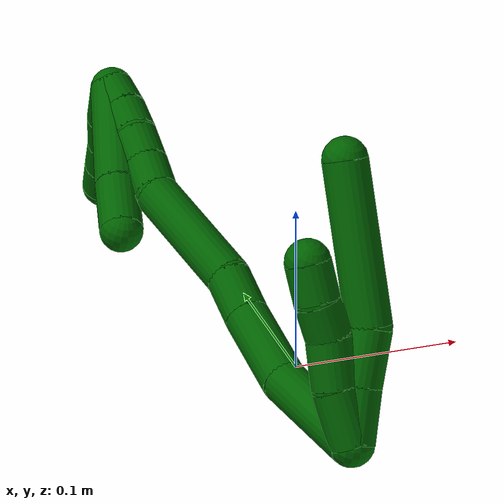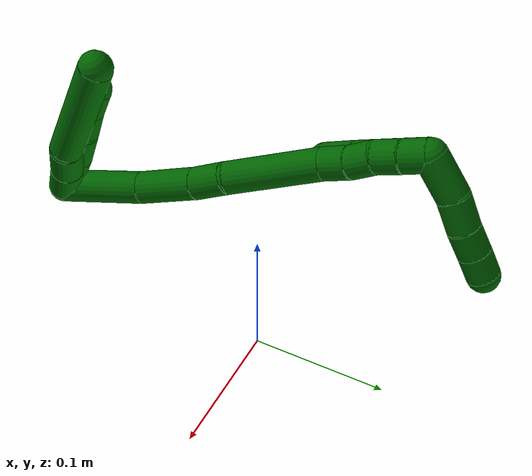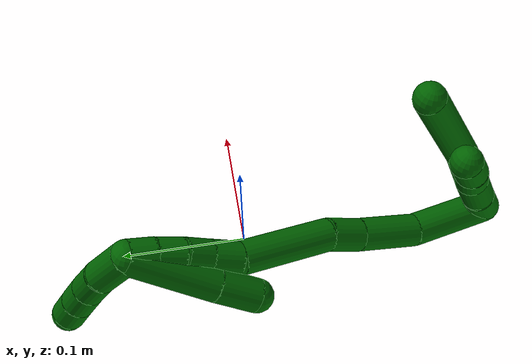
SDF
<sdf version="1.7">
 <world name="default">
  <model name="6">
   <static>0</static>
   <link name="6">
    <collision name="collision-cylinder-e_1_2_8">
     <pose>0.002077 0.008675 0.012284 -0.614861 0.137244 -0.043636</pose>
     <geometry><cylinder><radius>0.0125</radius><length>0.030363</length></cylinder></geometry>
     <surface>
      <friction><ode><mu>1.16</mu><mu2>1.16</mu2><slip1>0</slip1><slip2>0</slip2></ode></friction>
      <contact><ode><kp>1e+06</kp><kd>1</kd><max_vel>0</max_vel><min_depth>0.001</min_depth></ode></contact>
     </surface>
    </collision>
    <visual name="visual-cylinder-e_1_2_8">
     <pose>0.002077 0.008675 0.012284 -0.614861 0.137244 -0.043636</pose>
     <geometry><cylinder><radius>0.0125</radius><length>0.030363</length></cylinder></geometry>
     <material><ambient>0 0.392157 0.003922 1</ambient></material>
    </visual>
    <collision name="collision-cylinder-e_2_8_9">
     <pose>0.006754 0.025427 0.037812 -0.547629 0.16606 -0.04674</pose>
     <geometry><cylinder><radius>0.0125</radius><length>0.031457</length></cylinder></geometry>
     <surface>
      <friction><ode><mu>1.16</mu><mu2>1.16</mu2><slip1>0</slip1><slip2>0</slip2></ode></friction>
      <contact><ode><kp>1e+06</kp><kd>1</kd><max_vel>0</max_vel><min_depth>0.001</min_depth></ode></contact>
     </surface>
    </collision>
    <visual name="visual-cylinder-e_2_8_9">
     <pose>0.006754 0.025427 0.037812 -0.547629 0.16606 -0.04674</pose>
     <geometry><cylinder><radius>0.0125</radius><length>0.031457</length></cylinder></geometry>
     <material><ambient>0 0.392157 0.003922 1</ambient></material>
    </visual>
    <collision name="collision-cylinder-e_3_9_6">
     <pose>0.003387 0.060186 0.085644 -0.657087 -0.135745 0.046338</pose>
     <geometry><cylinder><radius>0.0125</radius><length>0.08818</length></cylinder></geometry>
     <surface>
      <friction><ode><mu>1.16</mu><mu2>1.16</mu2><slip1>0</slip1><slip2>0</slip2></ode></friction>
      <contact><ode><kp>1e+06</kp><kd>1</kd><max_vel>0</max_vel><min_depth>0.001</min_depth></ode></contact>
     </surface>
    </collision>
    <visual name="visual-cylinder-e_3_9_6">
     <pose>0.003387 0.060186 0.085644 -0.657087 -0.135745 0.046338</pose>
     <geometry><cylinder><radius>0.0125</radius><length>0.08818</length></cylinder></geometry>
     <material><ambient>0 0.392157 0.003922 1</ambient></material>
    </visual>
    <collision name="collision-cylinder-e_1_2_10">
     <pose>-0.004822 0.008532 0.012124 -0.613232 -0.314481 0.100309</pose>
     <geometry><cylinder><radius>0.0125</radius><length>0.031179</length></cylinder></geometry>
     <surface>
      <friction><ode><mu>1.16</mu><mu2>1.16</mu2><slip1>0</slip1><slip2>0</slip2></ode></friction>
      <contact><ode><kp>1e+06</kp><kd>1</kd><max_vel>0</max_vel><min_depth>0.001</min_depth></ode></contact>
     </surface>
    </collision>
    <visual name="visual-cylinder-e_1_2_10">
     <pose>-0.004822 0.008532 0.012124 -0.613232 -0.314481 0.100309</pose>
     <geometry><cylinder><radius>0.0125</radius><length>0.031179</length></cylinder></geometry>
     <material><ambient>0 0.392157 0.003922 1</ambient></material>
    </visual>
    <collision name="collision-cylinder-e_2_10_11">
     <pose>-0.011515 0.024493 0.035547 -0.581613 -0.13744 0.041194</pose>
     <geometry><cylinder><radius>0.0125</radius><length>0.027304</length></cylinder></geometry>
     <surface>
      <friction><ode><mu>1.16</mu><mu2>1.16</mu2><slip1>0</slip1><slip2>0</slip2></ode></friction>
      <contact><ode><kp>1e+06</kp><kd>1</kd><max_vel>0</max_vel><min_depth>0.001</min_depth></ode></contact>
     </surface>
    </collision>
    <visual name="visual-cylinder-e_2_10_11">
     <pose>-0.011515 0.024493 0.035547 -0.581613 -0.13744 0.041194</pose>
     <geometry><cylinder><radius>0.0125</radius><length>0.027304</length></cylinder></geometry>
     <material><ambient>0 0.392157 0.003922 1</ambient></material>
    </visual>
    <collision name="collision-cylinder-e_3_11_12">
     <pose>-0.017037 0.03628 0.05515 -0.483272 -0.371331 0.092515</pose>
     <geometry><cylinder><radius>0.0125</radius><length>0.020126</length></cylinder></geometry>
     <surface>
      <friction><ode><mu>1.16</mu><mu2>1.16</mu2><slip1>0</slip1><slip2>0</slip2></ode></friction>
      <contact><ode><kp>1e+06</kp><kd>1</kd><max_vel>0</max_vel><min_depth>0.001</min_depth></ode></contact>
     </surface>
    </collision>
    <visual name="visual-cylinder-e_3_11_12">
     <pose>-0.017037 0.03628 0.05515 -0.483272 -0.371331 0.092515</pose>
     <geometry><cylinder><radius>0.0125</radius><length>0.020126</length></cylinder></geometry>
     <material><ambient>0 0.392157 0.003922 1</ambient></material>
    </visual>
    <collision name="collision-cylinder-e_4_12_5">
     <pose>-0.023319 0.046631 0.071912 -0.616494 -0.248552 0.079506</pose>
     <geometry><cylinder><radius>0.0125</radius><length>0.021391</length></cylinder></geometry>
     <surface>
      <friction><ode><mu>1.16</mu><mu2>1.16</mu2><slip1>0</slip1><slip2>0</slip2></ode></friction>
      <contact><ode><kp>1e+06</kp><kd>1</kd><max_vel>0</max_vel><min_depth>0.001</min_depth></ode></contact>
     </surface>
    </collision>
    <visual name="visual-cylinder-e_4_12_5">
     <pose>-0.023319 0.046631 0.071912 -0.616494 -0.248552 0.079506</pose>
     <geometry><cylinder><radius>0.0125</radius><length>0.021391</length></cylinder></geometry>
     <material><ambient>0 0.392157 0.003922 1</ambient></material>
    </visual>
    <collision name="collision-cylinder-e_1_2_13">
     <pose>-0.007451 0.030811 -0.004323 -1.7102 -0.235044 0.269928</pose>
     <geometry><cylinder><radius>0.0125</radius><length>0.063985</length></cylinder></geometry>
     <surface>
      <friction><ode><mu>1.16</mu><mu2>1.16</mu2><slip1>0</slip1><slip2>0</slip2></ode></friction>
      <contact><ode><kp>1e+06</kp><kd>1</kd><max_vel>0</max_vel><min_depth>0.001</min_depth></ode></contact>
     </surface>
    </collision>
    <visual name="visual-cylinder-e_1_2_13">
     <pose>-0.007451 0.030811 -0.004323 -1.7102 -0.235044 0.269928</pose>
     <geometry><cylinder><radius>0.0125</radius><length>0.063985</length></cylinder></geometry>
     <material><ambient>0 0.392157 0.003922 1</ambient></material>
    </visual>
    <collision name="collision-cylinder-e_2_13_14">
     <pose>-0.018065 0.085793 -0.00624 -1.47156 -0.129536 0.117309</pose>
     <geometry><cylinder><radius>0.0125</radius><length>0.048992</length></cylinder></geometry>
     <surface>
      <friction><ode><mu>1.16</mu><mu2>1.16</mu2><slip1>0</slip1><slip2>0</slip2></ode></friction>
      <contact><ode><kp>1e+06</kp><kd>1</kd><max_vel>0</max_vel><min_depth>0.001</min_depth></ode></contact>
     </surface>
    </collision>
    <visual name="visual-cylinder-e_2_13_14">
     <pose>-0.018065 0.085793 -0.00624 -1.47156 -0.129536 0.117309</pose>
     <geometry><cylinder><radius>0.0125</radius><length>0.048992</length></cylinder></geometry>
     <material><ambient>0 0.392157 0.003922 1</ambient></material>
    </visual>
    <collision name="collision-cylinder-e_3_14_15">
     <pose>-0.022892 0.123495 -0.000882 -1.35605 -0.119487 0.096275</pose>
     <geometry><cylinder><radius>0.0125</radius><length>0.027895</length></cylinder></geometry>
     <surface>
      <friction><ode><mu>1.16</mu><mu2>1.16</mu2><slip1>0</slip1><slip2>0</slip2></ode></friction>
      <contact><ode><kp>1e+06</kp><kd>1</kd><max_vel>0</max_vel><min_depth>0.001</min_depth></ode></contact>
     </surface>
    </collision>
    <visual name="visual-cylinder-e_3_14_15">
     <pose>-0.022892 0.123495 -0.000882 -1.35605 -0.119487 0.096275</pose>
     <geometry><cylinder><radius>0.0125</radius><length>0.027895</length></cylinder></geometry>
     <material><ambient>0 0.392157 0.003922 1</ambient></material>
    </visual>
    <collision name="collision-cylinder-e_4_15_16">
     <pose>-0.035004 0.173037 0.00375 -1.52414 -0.282115 0.269408</pose>
     <geometry><cylinder><radius>0.0125</radius><length>0.075069</length></cylinder></geometry>
     <surface>
      <friction><ode><mu>1.16</mu><mu2>1.16</mu2><slip1>0</slip1><slip2>0</slip2></ode></friction>
      <contact><ode><kp>1e+06</kp><kd>1</kd><max_vel>0</max_vel><min_depth>0.001</min_depth></ode></contact>
     </surface>
    </collision>
    <visual name="visual-cylinder-e_4_15_16">
     <pose>-0.035004 0.173037 0.00375 -1.52414 -0.282115 0.269408</pose>
     <geometry><cylinder><radius>0.0125</radius><length>0.075069</length></cylinder></geometry>
     <material><ambient>0 0.392157 0.003922 1</ambient></material>
    </visual>
    <collision name="collision-cylinder-e_5_16_17">
     <pose>-0.045477 0.220378 0.00738 -1.40049 -0.002037 0.001717</pose>
     <geometry><cylinder><radius>0.0125</radius><length>0.022993</length></cylinder></geometry>
     <surface>
      <friction><ode><mu>1.16</mu><mu2>1.16</mu2><slip1>0</slip1><slip2>0</slip2></ode></friction>
      <contact><ode><kp>1e+06</kp><kd>1</kd><max_vel>0</max_vel><min_depth>0.001</min_depth></ode></contact>
     </surface>
    </collision>
    <visual name="visual-cylinder-e_5_16_17">
     <pose>-0.045477 0.220378 0.00738 -1.40049 -0.002037 0.001717</pose>
     <geometry><cylinder><radius>0.0125</radius><length>0.022993</length></cylinder></geometry>
     <material><ambient>0 0.392157 0.003922 1</ambient></material>
    </visual>
    <collision name="collision-cylinder-e_6_17_18">
     <pose>-0.046393 0.241598 0.012217 -1.28662 -0.086439 0.064821</pose>
     <geometry><cylinder><radius>0.0125</radius><length>0.020684</length></cylinder></geometry>
     <surface>
      <friction><ode><mu>1.16</mu><mu2>1.16</mu2><slip1>0</slip1><slip2>0</slip2></ode></friction>
      <contact><ode><kp>1e+06</kp><kd>1</kd><max_vel>0</max_vel><min_depth>0.001</min_depth></ode></contact>
     </surface>
    </collision>
    <visual name="visual-cylinder-e_6_17_18">
     <pose>-0.046393 0.241598 0.012217 -1.28662 -0.086439 0.064821</pose>
     <geometry><cylinder><radius>0.0125</radius><length>0.020684</length></cylinder></geometry>
     <material><ambient>0 0.392157 0.003922 1</ambient></material>
    </visual>
    <collision name="collision-cylinder-e_7_18_19">
     <pose>-0.04767 0.261603 0.01625 -1.45811 -0.037753 0.033722</pose>
     <geometry><cylinder><radius>0.0125</radius><length>0.020372</length></cylinder></geometry>
     <surface>
      <friction><ode><mu>1.16</mu><mu2>1.16</mu2><slip1>0</slip1><slip2>0</slip2></ode></friction>
      <contact><ode><kp>1e+06</kp><kd>1</kd><max_vel>0</max_vel><min_depth>0.001</min_depth></ode></contact>
     </surface>
    </collision>
    <visual name="visual-cylinder-e_7_18_19">
     <pose>-0.04767 0.261603 0.01625 -1.45811 -0.037753 0.033722</pose>
     <geometry><cylinder><radius>0.0125</radius><length>0.020372</length></cylinder></geometry>
     <material><ambient>0 0.392157 0.003922 1</ambient></material>
    </visual>
    <collision name="collision-cylinder-e_8_19_1">
     <pose>-0.049151 0.281641 0.018039 -1.50598 -0.109769 0.102888</pose>
     <geometry><cylinder><radius>0.0125</radius><length>0.020009</length></cylinder></geometry>
     <surface>
      <friction><ode><mu>1.16</mu><mu2>1.16</mu2><slip1>0</slip1><slip2>0</slip2></ode></friction>
      <contact><ode><kp>1e+06</kp><kd>1</kd><max_vel>0</max_vel><min_depth>0.001</min_depth></ode></contact>
     </surface>
    </collision>
    <visual name="visual-cylinder-e_8_19_1">
     <pose>-0.049151 0.281641 0.018039 -1.50598 -0.109769 0.102888</pose>
     <geometry><cylinder><radius>0.0125</radius><length>0.020009</length></cylinder></geometry>
     <material><ambient>0 0.392157 0.003922 1</ambient></material>
    </visual>
    <collision name="collision-cylinder-e_1_1_20">
     <pose>-0.056259 0.259555 0.008391 1.88189 -0.176935 -0.242189</pose>
     <geometry><cylinder><radius>0.0125</radius><length>0.068312</length></cylinder></geometry>
     <surface>
      <friction><ode><mu>1.16</mu><mu2>1.16</mu2><slip1>0</slip1><slip2>0</slip2></ode></friction>
      <contact><ode><kp>1e+06</kp><kd>1</kd><max_vel>0</max_vel><min_depth>0.001</min_depth></ode></contact>
     </surface>
    </collision>
    <visual name="visual-cylinder-e_1_1_20">
     <pose>-0.056259 0.259555 0.008391 1.88189 -0.176935 -0.242189</pose>
     <geometry><cylinder><radius>0.0125</radius><length>0.068312</length></cylinder></geometry>
     <material><ambient>0 0.392157 0.003922 1</ambient></material>
    </visual>
    <collision name="collision-cylinder-e_2_20_4">
     <pose>-0.06441 0.212527 -0.00647 1.86612 -0.135475 -0.182591</pose>
     <geometry><cylinder><radius>0.0125</radius><length>0.031688</length></cylinder></geometry>
     <surface>
      <friction><ode><mu>1.16</mu><mu2>1.16</mu2><slip1>0</slip1><slip2>0</slip2></ode></friction>
      <contact><ode><kp>1e+06</kp><kd>1</kd><max_vel>0</max_vel><min_depth>0.001</min_depth></ode></contact>
     </surface>
    </collision>
    <visual name="visual-cylinder-e_2_20_4">
     <pose>-0.06441 0.212527 -0.00647 1.86612 -0.135475 -0.182591</pose>
     <geometry><cylinder><radius>0.0125</radius><length>0.031688</length></cylinder></geometry>
     <material><ambient>0 0.392157 0.003922 1</ambient></material>
    </visual>
    <collision name="collision-cylinder-e_1_1_21">
     <pose>-0.046487 0.298208 0.003603 -2.72661 0.224319 -0.982541</pose>
     <geometry><cylinder><radius>0.0125</radius><length>0.033804</length></cylinder></geometry>
     <surface>
      <friction><ode><mu>1.16</mu><mu2>1.16</mu2><slip1>0</slip1><slip2>0</slip2></ode></friction>
      <contact><ode><kp>1e+06</kp><kd>1</kd><max_vel>0</max_vel><min_depth>0.001</min_depth></ode></contact>
     </surface>
    </collision>
    <visual name="visual-cylinder-e_1_1_21">
     <pose>-0.046487 0.298208 0.003603 -2.72661 0.224319 -0.982541</pose>
     <geometry><cylinder><radius>0.0125</radius><length>0.033804</length></cylinder></geometry>
     <material><ambient>0 0.392157 0.003922 1</ambient></material>
    </visual>
    <collision name="collision-cylinder-e_2_21_22">
     <pose>-0.039423 0.307636 -0.023191 -2.90823 0.267806 -1.70948</pose>
     <geometry><cylinder><radius>0.0125</radius><length>0.02497</length></cylinder></geometry>
     <surface>
      <friction><ode><mu>1.16</mu><mu2>1.16</mu2><slip1>0</slip1><slip2>0</slip2></ode></friction>
      <contact><ode><kp>1e+06</kp><kd>1</kd><max_vel>0</max_vel><min_depth>0.001</min_depth></ode></contact>
     </surface>
    </collision>
    <visual name="visual-cylinder-e_2_21_22">
     <pose>-0.039423 0.307636 -0.023191 -2.90823 0.267806 -1.70948</pose>
     <geometry><cylinder><radius>0.0125</radius><length>0.02497</length></cylinder></geometry>
     <material><ambient>0 0.392157 0.003922 1</ambient></material>
    </visual>
    <collision name="collision-cylinder-e_3_22_23">
     <pose>-0.034355 0.313087 -0.044968 -2.88257 0.167877 -1.14711</pose>
     <geometry><cylinder><radius>0.0125</radius><length>0.021119</length></cylinder></geometry>
     <surface>
      <friction><ode><mu>1.16</mu><mu2>1.16</mu2><slip1>0</slip1><slip2>0</slip2></ode></friction>
      <contact><ode><kp>1e+06</kp><kd>1</kd><max_vel>0</max_vel><min_depth>0.001</min_depth></ode></contact>
     </surface>
    </collision>
    <visual name="visual-cylinder-e_3_22_23">
     <pose>-0.034355 0.313087 -0.044968 -2.88257 0.167877 -1.14711</pose>
     <geometry><cylinder><radius>0.0125</radius><length>0.021119</length></cylinder></geometry>
     <material><ambient>0 0.392157 0.003922 1</ambient></material>
    </visual>
    <collision name="collision-cylinder-e_4_23_3">
     <pose>-0.030847 0.318062 -0.064659 -2.90625 0.174396 -1.27347</pose>
     <geometry><cylinder><radius>0.0125</radius><length>0.020107</length></cylinder></geometry>
     <surface>
      <friction><ode><mu>1.16</mu><mu2>1.16</mu2><slip1>0</slip1><slip2>0</slip2></ode></friction>
      <contact><ode><kp>1e+06</kp><kd>1</kd><max_vel>0</max_vel><min_depth>0.001</min_depth></ode></contact>
     </surface>
    </collision>
    <visual name="visual-cylinder-e_4_23_3">
     <pose>-0.030847 0.318062 -0.064659 -2.90625 0.174396 -1.27347</pose>
     <geometry><cylinder><radius>0.0125</radius><length>0.020107</length></cylinder></geometry>
     <material><ambient>0 0.392157 0.003922 1</ambient></material>
    </visual>
    <collision name="collision-sphere-3">
     <pose>-0.029102 0.320371 -0.074288 0 -0 0</pose>
     <geometry><sphere><radius>0.0125</radius></sphere></geometry>
     <surface>
      <friction><ode><mu>1.16</mu><mu2>1.16</mu2><slip1>0</slip1><slip2>0</slip2></ode></friction>
      <contact><ode><kp>1e+06</kp><kd>1</kd><max_vel>0</max_vel><min_depth>0.001</min_depth></ode></contact>
     </surface>
    </collision>
    <visual name="visual-sphere-3">
     <pose>-0.029102 0.320371 -0.074288 0 -0 0</pose>
     <geometry><sphere><radius>0.0125</radius></sphere></geometry>
     <material><ambient>0 0.392157 0.003922 1</ambient></material>
    </visual>
    <collision name="collision-sphere-23">
     <pose>-0.032591 0.315753 -0.055031 0 -0 0</pose>
     <geometry><sphere><radius>0.0125</radius></sphere></geometry>
     <surface>
      <friction><ode><mu>1.16</mu><mu2>1.16</mu2><slip1>0</slip1><slip2>0</slip2></ode></friction>
      <contact><ode><kp>1e+06</kp><kd>1</kd><max_vel>0</max_vel><min_depth>0.001</min_depth></ode></contact>
     </surface>
    </collision>
    <visual name="visual-sphere-23">
     <pose>-0.032591 0.315753 -0.055031 0 -0 0</pose>
     <geometry><sphere><radius>0.0125</radius></sphere></geometry>
     <material><ambient>0 0.392157 0.003922 1</ambient></material>
    </visual>
    <collision name="collision-sphere-22">
     <pose>-0.03612 0.31042 -0.034904 0 -0 0</pose>
     <geometry><sphere><radius>0.0125</radius></sphere></geometry>
     <surface>
      <friction><ode><mu>1.16</mu><mu2>1.16</mu2><slip1>0</slip1><slip2>0</slip2></ode></friction>
      <contact><ode><kp>1e+06</kp><kd>1</kd><max_vel>0</max_vel><min_depth>0.001</min_depth></ode></contact>
     </surface>
    </collision>
    <visual name="visual-sphere-22">
     <pose>-0.03612 0.31042 -0.034904 0 -0 0</pose>
     <geometry><sphere><radius>0.0125</radius></sphere></geometry>
     <material><ambient>0 0.392157 0.003922 1</ambient></material>
    </visual>
    <collision name="collision-sphere-21">
     <pose>-0.042727 0.304852 -0.011477 0 -0 0</pose>
     <geometry><sphere><radius>0.0125</radius></sphere></geometry>
     <surface>
      <friction><ode><mu>1.16</mu><mu2>1.16</mu2><slip1>0</slip1><slip2>0</slip2></ode></friction>
      <contact><ode><kp>1e+06</kp><kd>1</kd><max_vel>0</max_vel><min_depth>0.001</min_depth></ode></contact>
     </surface>
    </collision>
    <visual name="visual-sphere-21">
     <pose>-0.042727 0.304852 -0.011477 0 -0 0</pose>
     <geometry><sphere><radius>0.0125</radius></sphere></geometry>
     <material><ambient>0 0.392157 0.003922 1</ambient></material>
    </visual>
    <collision name="collision-sphere-4">
     <pose>-0.06655 0.197508 -0.011039 0 -0 0</pose>
     <geometry><sphere><radius>0.0125</radius></sphere></geometry>
     <surface>
      <friction><ode><mu>1.16</mu><mu2>1.16</mu2><slip1>0</slip1><slip2>0</slip2></ode></friction>
      <contact><ode><kp>1e+06</kp><kd>1</kd><max_vel>0</max_vel><min_depth>0.001</min_depth></ode></contact>
     </surface>
    </collision>
    <visual name="visual-sphere-4">
     <pose>-0.06655 0.197508 -0.011039 0 -0 0</pose>
     <geometry><sphere><radius>0.0125</radius></sphere></geometry>
     <material><ambient>0 0.392157 0.003922 1</ambient></material>
    </visual>
    <collision name="collision-sphere-20">
     <pose>-0.062271 0.227546 -0.0019 0 -0 0</pose>
     <geometry><sphere><radius>0.0125</radius></sphere></geometry>
     <surface>
      <friction><ode><mu>1.16</mu><mu2>1.16</mu2><slip1>0</slip1><slip2>0</slip2></ode></friction>
      <contact><ode><kp>1e+06</kp><kd>1</kd><max_vel>0</max_vel><min_depth>0.001</min_depth></ode></contact>
     </surface>
    </collision>
    <visual name="visual-sphere-20">
     <pose>-0.062271 0.227546 -0.0019 0 -0 0</pose>
     <geometry><sphere><radius>0.0125</radius></sphere></geometry>
     <material><ambient>0 0.392157 0.003922 1</ambient></material>
    </visual>
    <collision name="collision-sphere-11">
     <pose>-0.013385 0.031922 0.046847 0 -0 0</pose>
     <geometry><sphere><radius>0.0125</radius></sphere></geometry>
     <surface>
      <friction><ode><mu>1.16</mu><mu2>1.16</mu2><slip1>0</slip1><slip2>0</slip2></ode></friction>
      <contact><ode><kp>1e+06</kp><kd>1</kd><max_vel>0</max_vel><min_depth>0.001</min_depth></ode></contact>
     </surface>
    </collision>
    <visual name="visual-sphere-11">
     <pose>-0.013385 0.031922 0.046847 0 -0 0</pose>
     <geometry><sphere><radius>0.0125</radius></sphere></geometry>
     <material><ambient>0 0.392157 0.003922 1</ambient></material>
    </visual>
    <collision name="collision-sphere-10">
     <pose>-0.009644 0.017064 0.024247 0 -0 0</pose>
     <geometry><sphere><radius>0.0125</radius></sphere></geometry>
     <surface>
      <friction><ode><mu>1.16</mu><mu2>1.16</mu2><slip1>0</slip1><slip2>0</slip2></ode></friction>
      <contact><ode><kp>1e+06</kp><kd>1</kd><max_vel>0</max_vel><min_depth>0.001</min_depth></ode></contact>
     </surface>
    </collision>
    <visual name="visual-sphere-10">
     <pose>-0.009644 0.017064 0.024247 0 -0 0</pose>
     <geometry><sphere><radius>0.0125</radius></sphere></geometry>
     <material><ambient>0 0.392157 0.003922 1</ambient></material>
    </visual>
    <collision name="collision-sphere-6">
     <pose>-0.002579 0.086869 0.120233 0 -0 0</pose>
     <geometry><sphere><radius>0.0125</radius></sphere></geometry>
     <surface>
      <friction><ode><mu>1.16</mu><mu2>1.16</mu2><slip1>0</slip1><slip2>0</slip2></ode></friction>
      <contact><ode><kp>1e+06</kp><kd>1</kd><max_vel>0</max_vel><min_depth>0.001</min_depth></ode></contact>
     </surface>
    </collision>
    <visual name="visual-sphere-6">
     <pose>-0.002579 0.086869 0.120233 0 -0 0</pose>
     <geometry><sphere><radius>0.0125</radius></sphere></geometry>
     <material><ambient>0 0.392157 0.003922 1</ambient></material>
    </visual>
    <collision name="collision-sphere-9">
     <pose>0.009354 0.033503 0.051056 0 -0 0</pose>
     <geometry><sphere><radius>0.0125</radius></sphere></geometry>
     <surface>
      <friction><ode><mu>1.16</mu><mu2>1.16</mu2><slip1>0</slip1><slip2>0</slip2></ode></friction>
      <contact><ode><kp>1e+06</kp><kd>1</kd><max_vel>0</max_vel><min_depth>0.001</min_depth></ode></contact>
     </surface>
    </collision>
    <visual name="visual-sphere-9">
     <pose>0.009354 0.033503 0.051056 0 -0 0</pose>
     <geometry><sphere><radius>0.0125</radius></sphere></geometry>
     <material><ambient>0 0.392157 0.003922 1</ambient></material>
    </visual>
    <collision name="collision-sphere-2">
     <geometry><sphere><radius>0.0125</radius></sphere></geometry>
     <surface>
      <friction><ode><mu>1.16</mu><mu2>1.16</mu2><slip1>0</slip1><slip2>0</slip2></ode></friction>
      <contact><ode><kp>1e+06</kp><kd>1</kd><max_vel>0</max_vel><min_depth>0.001</min_depth></ode></contact>
     </surface>
    </collision>
    <visual name="visual-sphere-2">
     <geometry><sphere><radius>0.0125</radius></sphere></geometry>
     <material><ambient>0 0.392157 0.003922 1</ambient></material>
    </visual>
    <collision name="collision-sphere-19">
     <pose>-0.048055 0.271717 0.017395 0 -0 0</pose>
     <geometry><sphere><radius>0.0125</radius></sphere></geometry>
     <surface>
      <friction><ode><mu>1.16</mu><mu2>1.16</mu2><slip1>0</slip1><slip2>0</slip2></ode></friction>
      <contact><ode><kp>1e+06</kp><kd>1</kd><max_vel>0</max_vel><min_depth>0.001</min_depth></ode></contact>
     </surface>
    </collision>
    <visual name="visual-sphere-19">
     <pose>-0.048055 0.271717 0.017395 0 -0 0</pose>
     <geometry><sphere><radius>0.0125</radius></sphere></geometry>
     <material><ambient>0 0.392157 0.003922 1</ambient></material>
    </visual>
    <collision name="collision-sphere-8">
     <pose>0.004154 0.01735 0.024569 0 -0 0</pose>
     <geometry><sphere><radius>0.0125</radius></sphere></geometry>
     <surface>
      <friction><ode><mu>1.16</mu><mu2>1.16</mu2><slip1>0</slip1><slip2>0</slip2></ode></friction>
      <contact><ode><kp>1e+06</kp><kd>1</kd><max_vel>0</max_vel><min_depth>0.001</min_depth></ode></contact>
     </surface>
    </collision>
    <visual name="visual-sphere-8">
     <pose>0.004154 0.01735 0.024569 0 -0 0</pose>
     <geometry><sphere><radius>0.0125</radius></sphere></geometry>
     <material><ambient>0 0.392157 0.003922 1</ambient></material>
    </visual>
    <collision name="collision-sphere-12">
     <pose>-0.020688 0.040637 0.063454 0 -0 0</pose>
     <geometry><sphere><radius>0.0125</radius></sphere></geometry>
     <surface>
      <friction><ode><mu>1.16</mu><mu2>1.16</mu2><slip1>0</slip1><slip2>0</slip2></ode></friction>
      <contact><ode><kp>1e+06</kp><kd>1</kd><max_vel>0</max_vel><min_depth>0.001</min_depth></ode></contact>
     </surface>
    </collision>
    <visual name="visual-sphere-12">
     <pose>-0.020688 0.040637 0.063454 0 -0 0</pose>
     <geometry><sphere><radius>0.0125</radius></sphere></geometry>
     <material><ambient>0 0.392157 0.003922 1</ambient></material>
    </visual>
    <collision name="collision-sphere-5">
     <pose>-0.02595 0.052625 0.08037 0 -0 0</pose>
     <geometry><sphere><radius>0.0125</radius></sphere></geometry>
     <surface>
      <friction><ode><mu>1.16</mu><mu2>1.16</mu2><slip1>0</slip1><slip2>0</slip2></ode></friction>
      <contact><ode><kp>1e+06</kp><kd>1</kd><max_vel>0</max_vel><min_depth>0.001</min_depth></ode></contact>
     </surface>
    </collision>
    <visual name="visual-sphere-5">
     <pose>-0.02595 0.052625 0.08037 0 -0 0</pose>
     <geometry><sphere><radius>0.0125</radius></sphere></geometry>
     <material><ambient>0 0.392157 0.003922 1</ambient></material>
    </visual>
    <collision name="collision-sphere-13">
     <pose>-0.014901 0.061622 -0.008647 0 -0 0</pose>
     <geometry><sphere><radius>0.0125</radius></sphere></geometry>
     <surface>
      <friction><ode><mu>1.16</mu><mu2>1.16</mu2><slip1>0</slip1><slip2>0</slip2></ode></friction>
      <contact><ode><kp>1e+06</kp><kd>1</kd><max_vel>0</max_vel><min_depth>0.001</min_depth></ode></contact>
     </surface>
    </collision>
    <visual name="visual-sphere-13">
     <pose>-0.014901 0.061622 -0.008647 0 -0 0</pose>
     <geometry><sphere><radius>0.0125</radius></sphere></geometry>
     <material><ambient>0 0.392157 0.003922 1</ambient></material>
    </visual>
    <collision name="collision-sphere-14">
     <pose>-0.02123 0.109965 -0.003834 0 -0 0</pose>
     <geometry><sphere><radius>0.0125</radius></sphere></geometry>
     <surface>
      <friction><ode><mu>1.16</mu><mu2>1.16</mu2><slip1>0</slip1><slip2>0</slip2></ode></friction>
      <contact><ode><kp>1e+06</kp><kd>1</kd><max_vel>0</max_vel><min_depth>0.001</min_depth></ode></contact>
     </surface>
    </collision>
    <visual name="visual-sphere-14">
     <pose>-0.02123 0.109965 -0.003834 0 -0 0</pose>
     <geometry><sphere><radius>0.0125</radius></sphere></geometry>
     <material><ambient>0 0.392157 0.003922 1</ambient></material>
    </visual>
    <collision name="collision-sphere-15">
     <pose>-0.024555 0.137025 0.002069 0 -0 0</pose>
     <geometry><sphere><radius>0.0125</radius></sphere></geometry>
     <surface>
      <friction><ode><mu>1.16</mu><mu2>1.16</mu2><slip1>0</slip1><slip2>0</slip2></ode></friction>
      <contact><ode><kp>1e+06</kp><kd>1</kd><max_vel>0</max_vel><min_depth>0.001</min_depth></ode></contact>
     </surface>
    </collision>
    <visual name="visual-sphere-15">
     <pose>-0.024555 0.137025 0.002069 0 -0 0</pose>
     <geometry><sphere><radius>0.0125</radius></sphere></geometry>
     <material><ambient>0 0.392157 0.003922 1</ambient></material>
    </visual>
    <collision name="collision-sphere-16">
     <pose>-0.045453 0.209048 0.005432 0 -0 0</pose>
     <geometry><sphere><radius>0.0125</radius></sphere></geometry>
     <surface>
      <friction><ode><mu>1.16</mu><mu2>1.16</mu2><slip1>0</slip1><slip2>0</slip2></ode></friction>
      <contact><ode><kp>1e+06</kp><kd>1</kd><max_vel>0</max_vel><min_depth>0.001</min_depth></ode></contact>
     </surface>
    </collision>
    <visual name="visual-sphere-16">
     <pose>-0.045453 0.209048 0.005432 0 -0 0</pose>
     <geometry><sphere><radius>0.0125</radius></sphere></geometry>
     <material><ambient>0 0.392157 0.003922 1</ambient></material>
    </visual>
    <collision name="collision-sphere-17">
     <pose>-0.0455 0.231708 0.009328 0 -0 0</pose>
     <geometry><sphere><radius>0.0125</radius></sphere></geometry>
     <surface>
      <friction><ode><mu>1.16</mu><mu2>1.16</mu2><slip1>0</slip1><slip2>0</slip2></ode></friction>
      <contact><ode><kp>1e+06</kp><kd>1</kd><max_vel>0</max_vel><min_depth>0.001</min_depth></ode></contact>
     </surface>
    </collision>
    <visual name="visual-sphere-17">
     <pose>-0.0455 0.231708 0.009328 0 -0 0</pose>
     <geometry><sphere><radius>0.0125</radius></sphere></geometry>
     <material><ambient>0 0.392157 0.003922 1</ambient></material>
    </visual>
    <collision name="collision-sphere-18">
     <pose>-0.047286 0.251488 0.015106 0 -0 0</pose>
     <geometry><sphere><radius>0.0125</radius></sphere></geometry>
     <surface>
      <friction><ode><mu>1.16</mu><mu2>1.16</mu2><slip1>0</slip1><slip2>0</slip2></ode></friction>
      <contact><ode><kp>1e+06</kp><kd>1</kd><max_vel>0</max_vel><min_depth>0.001</min_depth></ode></contact>
     </surface>
    </collision>
    <visual name="visual-sphere-18">
     <pose>-0.047286 0.251488 0.015106 0 -0 0</pose>
     <geometry><sphere><radius>0.0125</radius></sphere></geometry>
     <material><ambient>0 0.392157 0.003922 1</ambient></material>
    </visual>
    <collision name="collision-sphere-1">
     <pose>-0.050247 0.291564 0.018683 0 -0 0</pose>
     <geometry><sphere><radius>0.0125</radius></sphere></geometry>
     <surface>
      <friction><ode><mu>1.16</mu><mu2>1.16</mu2><slip1>0</slip1><slip2>0</slip2></ode></friction>
      <contact><ode><kp>1e+06</kp><kd>1</kd><max_vel>0</max_vel><min_depth>0.001</min_depth></ode></contact>
     </surface>
    </collision>
    <visual name="visual-sphere-1">
     <pose>-0.050247 0.291564 0.018683 0 -0 0</pose>
     <geometry><sphere><radius>0.0125</radius></sphere></geometry>
     <material><ambient>0 0.392157 0.003922 1</ambient></material>
    </visual>
    <inertial>
     <pose>-0.025475 0.143875 0.015415 0 -0 0</pose>
     <mass>0.75</mass>
     <inertia>
      <ixx>0.000189</ixx>
      <ixy>0</ixy>
      <ixz>0</ixz>
      <iyy>9.1e-05</iyy>
      <iyz>0</iyz>
      <izz>-5.9e-05</izz>
     </inertia>
    </inertial>
   </link>
   <pose>-0.031778 -0.18701 0.054045 0.253396 0.142395 0.052306</pose>
  </model>
 </world>
</sdf>
